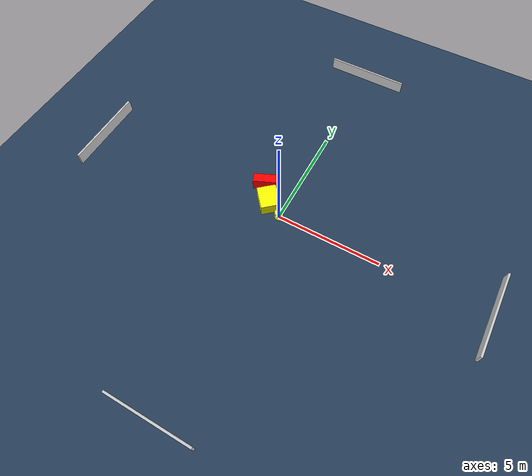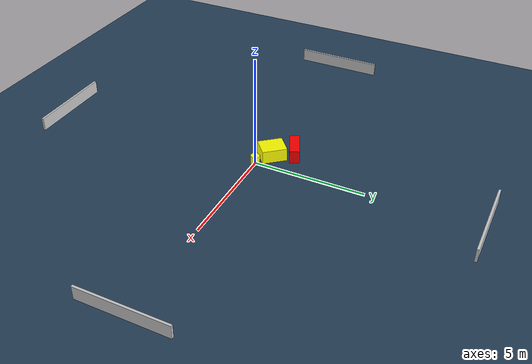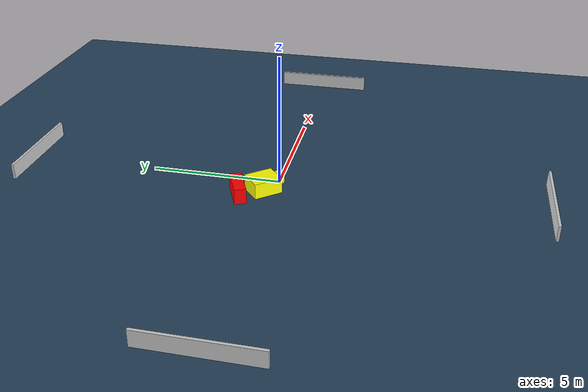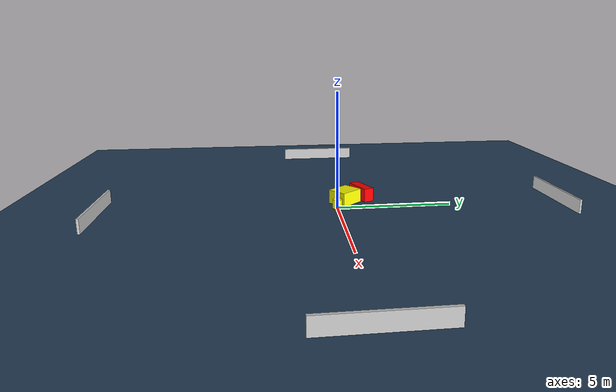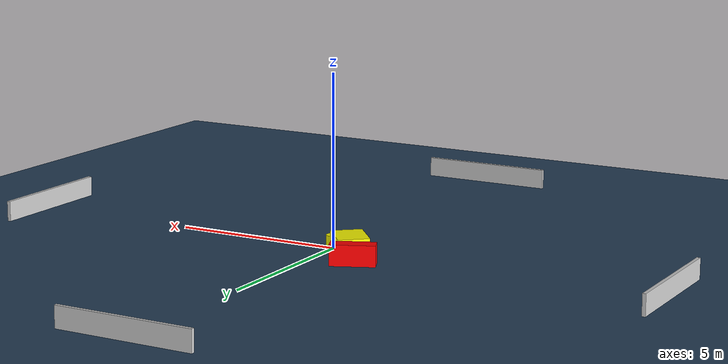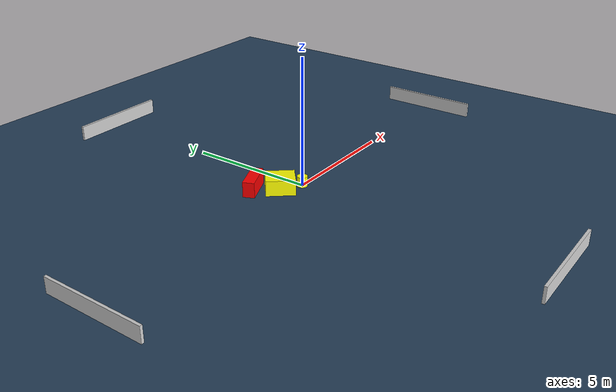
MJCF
<?xml version="1.0" ?>
<mujoco model="generated_environment">
  <option timestep="0.01" integrator="RK4" cone="elliptic"/>
  <default>
    <geom density="1"/>
  </default>
  <asset>
    <texture builtin="gradient" height="3072" name="skybox" rgb1="0.3 0.5 0.7" rgb2="0 0 0" type="skybox" width="512"/>
    <texture builtin="checker" height="300" name="groundplane" rgb1="0.2 0.3 0.4" rgb2="0.1 0.2 0.3" type="2d" width="300"/>
    <material name="groundplane" reflectance="0.2" texrepeat="5 5" texture="groundplane"/>
  </asset>
  <worldbody>
    <light dir="0 0 -1" directional="true" pos="0 0 1.5"/>
    <geom condim="3" friction="0.5 0.005 0.001" material="groundplane" name="floor" pos="0 0 0" size="0 0 0.05" type="plane"/>
    <body name="walls">
      <geom name="wall_1" condim="4" pos="-10.0 0.0 0.3" rgba="0.800000011920929 0.800000011920929 0.800000011920929 1.0" size="0.05 2.0 0.3" type="box"/>
      <geom name="wall_2" condim="4" pos="10.0 0.0 0.3" rgba="0.800000011920929 0.800000011920929 0.800000011920929 1.0" size="0.05 2.0 0.3" type="box"/>
      <geom name="wall_3" condim="4" pos="0.0 -10.0 0.3" rgba="0.800000011920929 0.800000011920929 0.800000011920929 1.0" size="2.0 0.05 0.3" type="box"/>
      <geom name="wall_4" condim="4" pos="0.0 10.0 0.3" rgba="0.800000011920929 0.800000011920929 0.800000011920929 1.0" size="2.0 0.05 0.3" type="box"/>
    </body>
    <body name="robot">
      <joint name="joint_x" type="slide" pos="0 0 0" axis="1 0 0"/>
      <joint name="joint_y" type="slide" pos="0 0 0" axis="0 1 0"/>
      <geom name="robot" type="cylinder" pos="0.0 0.0 0.2" size="0.2 0.2 0.0" mass="5.0" friction="1.0 0.005 0.0001" condim="4" rgba="1.0 1.0 0.0 1.0"/>
    </body>
    <body name="obstacle_1_movable">
      <geom name="obstacle_1_movable" condim="4" pos="-0.7884155297361005 0.43357272035348315 0.3" euler="0 0 220.48027913489088" friction="0.0 0.005 0.001" rgba="1.0 1.0 0.0 1.0" size="0.4535986843592964 0.5564452012296064 0.3" type="box" mass="0.1"/>
      <joint type="free"/>
    </body>
    <body name="obstacle_2_static">
      <geom name="obstacle_2_static" condim="4" pos="-1.3463189503857416 1.2637852822619897 0.3" euler="0 0 203.64256034486127" friction="0.0 0.005 0.001" rgba="1.0 0.0 0.0 1.0" size="0.6413357010973879 0.2238058306732213 0.3" type="box"/>
    </body>
  </worldbody>
  <actuator>
    <motor name="actuator_x" joint="joint_x" gear="1" ctrlrange="-1 1"/>
    <motor name="actuator_y" joint="joint_y" gear="1" ctrlrange="-1 1"/>
  </actuator>
</mujoco>
